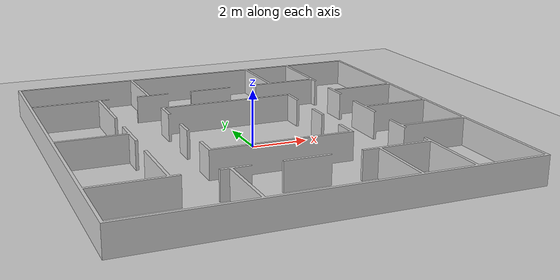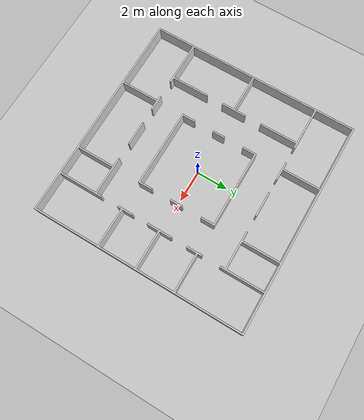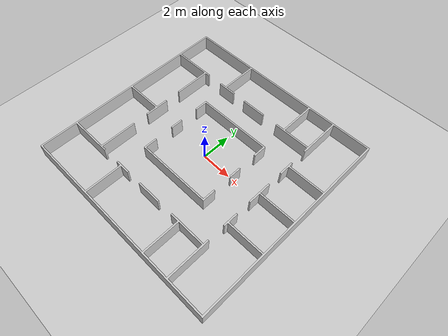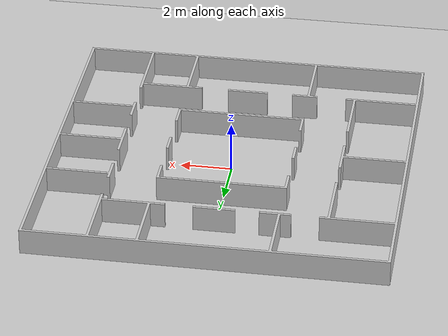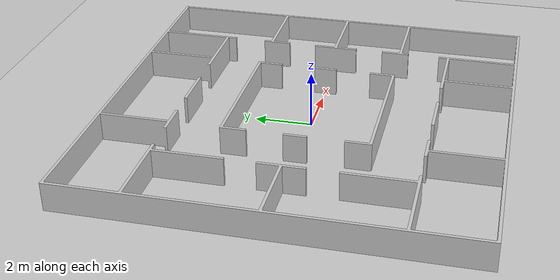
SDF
<sdf version="1.5">
    <world name="circular_corridor_real">
        <!-- A global light source -->
        <include>
            <uri>model://sun</uri>
        </include>

        <!-- A ground plane -->
        <include>
            <uri>model://ground_plane</uri>
        </include>

        <physics type="ode">
          <real_time_update_rate>1000.0</real_time_update_rate>
          <max_step_size>0.001</max_step_size>
          <real_time_factor>1</real_time_factor>
          <ode>
            <solver>
            <type>quick</type>
            <iters>150</iters>
            <precon_iters>0</precon_iters>
            <sor>1.400000</sor>
            <use_dynamic_moi_rescaling>1</use_dynamic_moi_rescaling>
            </solver>
            <constraints>
            <cfm>0.00001</cfm>
            <erp>0.2</erp>
            <contact_max_correcting_vel>2000.000000</contact_max_correcting_vel>
            <contact_surface_layer>0.01000</contact_surface_layer>
            </constraints>
          </ode>
        </physics>

        <!-- Sample object -->
        <include>
            <uri>model://circular_corridor_real</uri>
            <pose>0 0 0 0 0 0</pose>
            <static>1</static>
        </include>
        <scene>
            <ambient>0.4 0.4 0.4 1</ambient>
            <background>0.7 0.7 0.7 1</background>
            <shadows>false</shadows>
        </scene>
    </world>
</sdf>

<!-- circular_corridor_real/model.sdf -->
<sdf version="1.5">
  <model name="circular_corridor_real/">
    <static>true</static>
    <pose>0 0 0 0 0 0</pose>
    <link name="walls">
      <collision name="collision">
        <geometry>
          <mesh>
            <uri>model://circular_corridor_real/meshes/circular_corridor_real.dae</uri>
          </mesh>
        </geometry>
      </collision>
      <visual name="visual">
        <geometry>
          <mesh>
            <uri>model://circular_corridor_real/meshes/circular_corridor_real.dae</uri>
          </mesh>
        </geometry>
        <cast_shadows>false</cast_shadows>
      </visual>
    </link>
  </model>
</sdf>
